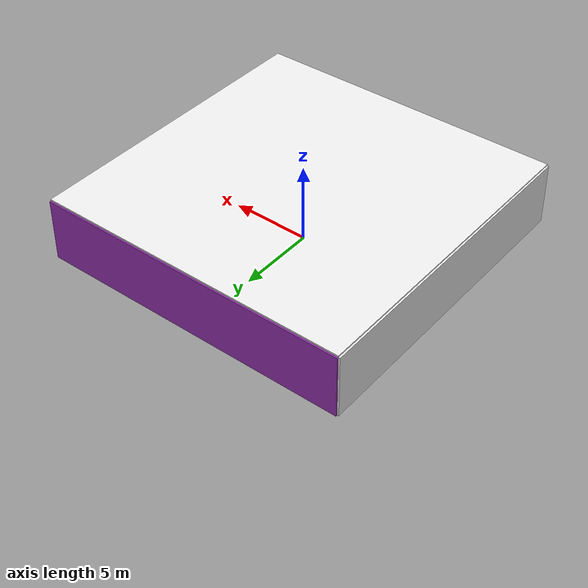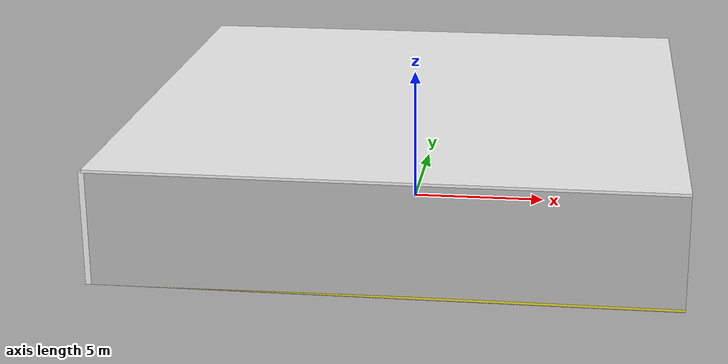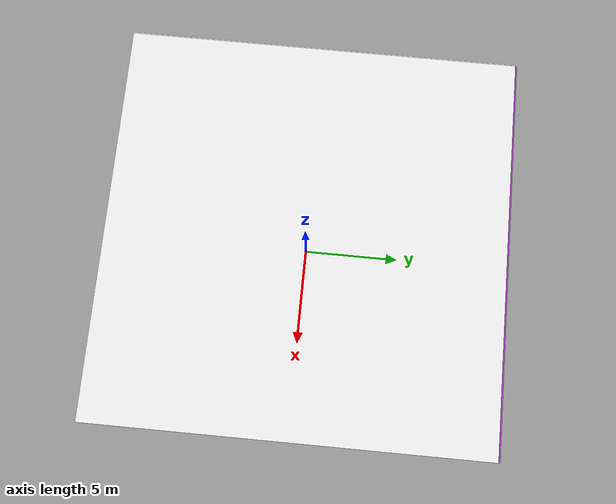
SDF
<sdf version="1.4">
 <world name="default">
  <physics type="ode">
   <max_step_size>0.001</max_step_size>
   <real_time_factor>1</real_time_factor>
   <real_time_update_rate>1000</real_time_update_rate>
   <gravity>0 0 -9.8</gravity>
  </physics>
  <scene><ambient>0.4 0.4 0.4 1</ambient><background>0.7 0.7 0.7 1</background><shadows>1</shadows></scene>
  <model name="Surrounding">
   <static>1</static>
   <link name="Ceiling">
    <collision name="Ceiling_Collision"><geometry><box><size>20 20 0.1</size></box></geometry></collision>
    <visual name="Ceiling_Visual">
     <geometry><box><size>20 20 0.1</size></box></geometry>
     <material>
      <script><uri>file://media/materials/scripts/gazebo.material</uri><name>Gazebo/White</name></script>
     </material>
    </visual>
    <pose>0 0 4.05 0 0 0</pose>
   </link>
   <link name="Wall_South">
    <collision name="Wall_South_Collision">
     <geometry><box><size>20 0 4</size></box></geometry>
     <pose>0 0 2 0 -0 0</pose>
    </collision>
    <visual name="Wall_South_Visual">
     <pose>0 0 2 0 -0 0</pose>
     <geometry><box><size>20 0 4</size></box></geometry>
     <material>
      <script><uri>file://media/materials/scripts/gazebo.material</uri><name>Gazebo/JointAnchor</name></script>
     </material>
    </visual>
    <velocity_decay><linear>0</linear><angular>0</angular></velocity_decay>
    <pose>0 -10 0 0 -0 0</pose>
   </link>
   <link name="Wall_East">
    <collision name="Wall_21_Collision">
     <geometry><box><size>20 0 4</size></box></geometry>
     <pose>0 0 2 0 -0 0</pose>
    </collision>
    <visual name="Wall_21_Visual">
     <pose>0 0 2 0 -0 0</pose>
     <geometry><box><size>20 0 4</size></box></geometry>
     <material>
      <script><uri>file://media/materials/scripts/gazebo.material</uri><name>Gazebo/Blue</name></script>
     </material>
    </visual>
    <velocity_decay><linear>0</linear><angular>0</angular></velocity_decay>
    <pose>10 0 0 0 -0 1.5708</pose>
   </link>
   <link name="Wall_North">
    <collision name="Wall_22_Collision">
     <geometry><box><size>20 0.2 4</size></box></geometry>
     <pose>0 0 2 0 -0 0</pose>
    </collision>
    <visual name="Wall_22_Visual">
     <pose>0 0 2 0 -0 0</pose>
     <geometry><box><size>20 0.2 4</size></box></geometry>
     <material>
      <script><uri>file://media/materials/scripts/gazebo.material</uri><name>Gazebo/Purple</name></script>
     </material>
    </visual>
    <velocity_decay><linear>0</linear><angular>0</angular></velocity_decay>
    <pose>0 10 0 0 -0 0</pose>
   </link>
   <link name="Wall_West">
    <collision name="Wall_23_Collision">
     <geometry><box><size>20 0.2 4</size></box></geometry>
     <pose>0 0 2 0 -0 0</pose>
    </collision>
    <visual name="Wall_23_Visual">
     <pose>0 0 2 0 -0 0</pose>
     <geometry><box><size>20 0.2 4</size></box></geometry>
     <material>
      <script><uri>file://media/materials/scripts/gazebo.material</uri><name>Gazebo/WhiteGlow</name></script>
     </material>
    </visual>
    <velocity_decay><linear>0</linear><angular>0</angular></velocity_decay>
    <pose>-10 0 0 0 0 -1.5708</pose>
   </link>
   <link name="Ground_link">
    <collision name="collision">
     <pose>0 0 .05 0 -0 0</pose>
     <geometry><box><size>20 20 0.1</size></box></geometry>
    </collision>
    <visual name="visual">
     <pose>0 0 .05 0 -0 0</pose>
     <geometry><box><size>20 20 0.1</size></box></geometry>
     <material>
      <script><uri>file://media/materials/scripts/gazebo.material</uri><name>Gazebo/Yellow</name></script>
     </material>
    </visual>
   </link>
   <static>1</static>
  </model>
  <spherical_coordinates>
   <surface_model>EARTH_WGS84</surface_model>
   <latitude_deg>0</latitude_deg>
   <longitude_deg>0</longitude_deg>
   <elevation>0</elevation>
   <heading_deg>0</heading_deg>
  </spherical_coordinates>
  <light name="lightball_0" type="diffuse">
   <diffuse>0.8 0.8 0.8 1</diffuse>
   <specular>0.2 0.2 0.2 1</specular>
   <attenuation>
    <range>100</range>
    <constant>0.7</constant>
    <linear>0.01</linear>
    <quadratic>0.001</quadratic>
   </attenuation>
   <direction>-0.5 0.1 -0.9</direction>
   <pose>8.27417522685 -3.62072904208 2.59661729951 0 0 0</pose>
  </light>
  <light name="lightball_1" type="diffuse">
   <diffuse>0.8 0.8 0.8 1</diffuse>
   <specular>0.2 0.2 0.2 1</specular>
   <attenuation>
    <range>100</range>
    <constant>0.7</constant>
    <linear>0.01</linear>
    <quadratic>0.001</quadratic>
   </attenuation>
   <direction>-0.5 0.1 -0.9</direction>
   <pose>1.42124493439 4.23514265245 2.70668799889 0 0 0</pose>
  </light>
  <light name="lightball_2" type="diffuse">
   <diffuse>0.8 0.8 0.8 1</diffuse>
   <specular>0.2 0.2 0.2 1</specular>
   <attenuation>
    <range>100</range>
    <constant>0.7</constant>
    <linear>0.01</linear>
    <quadratic>0.001</quadratic>
   </attenuation>
   <direction>-0.5 0.1 -0.9</direction>
   <pose>1.88012652619 2.27970773341 2.14681038386 0 0 0</pose>
  </light>
  <light name="lightball_3" type="diffuse">
   <diffuse>0.8 0.8 0.8 1</diffuse>
   <specular>0.2 0.2 0.2 1</specular>
   <attenuation>
    <range>100</range>
    <constant>0.7</constant>
    <linear>0.01</linear>
    <quadratic>0.001</quadratic>
   </attenuation>
   <direction>-0.5 0.1 -0.9</direction>
   <pose>-1.61610468777 7.62443703939 3.24820132498 0 0 0</pose>
  </light>
  <light name="lightball_4" type="diffuse">
   <diffuse>0.8 0.8 0.8 1</diffuse>
   <specular>0.2 0.2 0.2 1</specular>
   <attenuation>
    <range>100</range>
    <constant>0.7</constant>
    <linear>0.01</linear>
    <quadratic>0.001</quadratic>
   </attenuation>
   <direction>-0.5 0.1 -0.9</direction>
   <pose>8.85533142799 -9.33098931363 3.7889335261 0 0 0</pose>
  </light>
  <light name="lightball_5" type="diffuse">
   <diffuse>0.8 0.8 0.8 1</diffuse>
   <specular>0.2 0.2 0.2 1</specular>
   <attenuation>
    <range>100</range>
    <constant>0.7</constant>
    <linear>0.01</linear>
    <quadratic>0.001</quadratic>
   </attenuation>
   <direction>-0.5 0.1 -0.9</direction>
   <pose>3.71337033417 8.50153465392 2.63453978032 0 0 0</pose>
  </light>
  <light name="lightball_6" type="diffuse">
   <diffuse>0.8 0.8 0.8 1</diffuse>
   <specular>0.2 0.2 0.2 1</specular>
   <attenuation>
    <range>100</range>
    <constant>0.7</constant>
    <linear>0.01</linear>
    <quadratic>0.001</quadratic>
   </attenuation>
   <direction>-0.5 0.1 -0.9</direction>
   <pose>9.10221405045 -2.84269283771 1.37049663072 0 0 0</pose>
  </light>
  <include><uri>model://cabinet</uri><pose>-3.73350287201 0.866759015043 0 0 0 0.886011849511</pose></include>
  <include>
   <uri>model://construction_cone</uri>
   <pose>4.32494174384 0.81136283979 0 0 0 3.11772587762</pose>
  </include>
 </world>
</sdf>

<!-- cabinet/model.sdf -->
<sdf version="1.5">
  <model name="cabinet">
    <static>true</static>
    <link name="cabinet_bottom_plate">
      <inertial>
        <pose>0 0 -1 0 0 0</pose>
        <inertia>
          <ixx>2.050000</ixx>
          <ixy>0</ixy>
          <ixz>0</ixz>
          <iyy>2.050000</iyy>
          <iyz>0</iyz>
          <izz>2.050000</izz>
        </inertia>
        <mass>25.000000</mass>
      </inertial>
      <collision name="cabinet_bottom_plate_geom">
        <pose>0 0 0.010000 0 0 0</pose>
        <geometry>
          <box>
            <size>0.450000 0.450000 0.020000</size>
          </box>
        </geometry>
      </collision>
      <visual name="cabinet_bottom_plate_geom_visual">
        <pose>0 0 0.010000 0 0 0</pose>
        <geometry>
          <box>
            <size>0.450000 0.450000 0.020000</size>
          </box>
        </geometry>
        <material>
          <script>
            <uri>model://media/materials/scripts/gazebo.material</uri>
            <name>Gazebo/Wood</name>
          </script>
        </material>
      </visual>
      <collision name="cabinet_bottom_plate_geom_cabinet_back_plate">
        <pose>0.235000 0 0.510000 0 0 0</pose>
        <geometry>
          <box>
            <size>0.020000 0.450000 1.020000</size>
          </box>
        </geometry>
      </collision>
      <visual name="cabinet_bottom_plate_geom_cabinet_back_plate_visual">
        <pose>0.235000 0 0.510000 0 0 0</pose>
        <geometry>
          <box>
            <size>0.020000 0.450000 1.020000</size>
          </box>
        </geometry>
        <material>
          <script>
            <uri>model://media/materials/scripts/gazebo.material</uri>
            <name>Gazebo/Wood</name>
          </script>
        </material>
      </visual>
      <collision name="cabinet_bottom_plate_geom_cabinet_left_plate">
        <pose>0 0.235000 0.510000 0 0 0</pose>
        <geometry>
          <box>
            <size>0.450000 0.020000 1.020000</size>
          </box>
        </geometry>
      </collision>
      <visual name="cabinet_bottom_plate_geom_cabinet_left_plate_visual">
        <pose>0 0.235000 0.510000 0 0 0</pose>
        <geometry>
          <box>
            <size>0.450000 0.020000 1.020000</size>
          </box>
        </geometry>
        <material>
          <script>
            <uri>model://media/materials/scripts/gazebo.material</uri>
            <name>Gazebo/Wood</name>
          </script>
        </material>
      </visual>
      <collision name="cabinet_bottom_plate_geom_cabinet_middle_plate">
        <pose>0 0 0.510000 0 0 0</pose>
        <geometry>
          <box>
            <size>0.450000 0.450000 0.020000</size>
          </box>
        </geometry>
      </collision>
      <visual name="cabinet_bottom_plate_geom_cabinet_middle_plate_visual">
        <pose>0 0 0.510000 0 0 0</pose>
        <geometry>
          <box>
            <size>0.450000 0.450000 0.020000</size>
          </box>
        </geometry>
        <material>
          <script>
            <uri>model://media/materials/scripts/gazebo.material</uri>
            <name>Gazebo/Wood</name>
          </script>
        </material>
      </visual>
      <collision name="cabinet_bottom_plate_geom_cabinet_right_plate">
        <pose>0 -0.235000 0.510000 0 0 0</pose>
        <geometry>
          <box>
            <size>0.450000 0.020000 1.020000</size>
          </box>
        </geometry>
      </collision>
      <visual name="cabinet_bottom_plate_geom_cabinet_right_plate_visual">
        <pose>0 -0.235000 0.510000 0 0 0</pose>
        <geometry>
          <box>
            <size>0.450000 0.020000 1.020000</size>
          </box>
        </geometry>
        <material>
          <script>
            <uri>model://media/materials/scripts/gazebo.material</uri>
            <name>Gazebo/Wood</name>
          </script>
        </material>
      </visual>
      <collision name="cabinet_bottom_plate_geom_cabinet_top_plate">
        <pose>0 0 1.010000 0 0 0</pose>
        <geometry>
          <box>
            <size>0.450000 0.450000 0.020000</size>
          </box>
        </geometry>
      </collision>
      <visual name="cabinet_bottom_plate_geom_cabinet_top_plate_visual">
        <pose>0 0 1.010000 0 0 0</pose>
        <geometry>
          <box>
            <size>0.450000 0.450000 0.020000</size>
          </box>
        </geometry>
        <material>
          <script>
            <uri>model://media/materials/scripts/gazebo.material</uri>
            <name>Gazebo/Wood</name>
          </script>
        </material>
      </visual>
    </link>
  </model>
</sdf>

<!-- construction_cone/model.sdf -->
<sdf version="1.5">
  <model name="Construction Cone">
    <link name="link">
      <collision name="collision">
        <geometry>
          <mesh>
            <scale>10 10 10</scale>
            <uri>file://isr-testbed/construction_cone/meshes/construction_cone.dae</uri>
          </mesh>
        </geometry>
      </collision>
      <visual name="visual">
        <geometry>
          <mesh>
            <scale>10 10 10</scale>
            <uri>file://isr-testbed/construction_cone/meshes/construction_cone.dae</uri>
          </mesh>
        </geometry>
      </visual>
    </link>
  </model>
</sdf>
